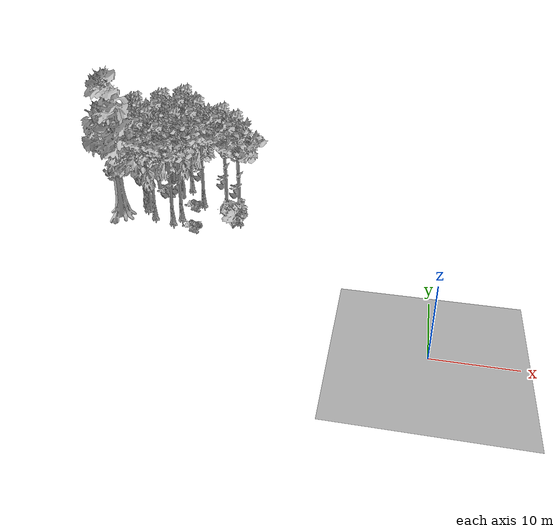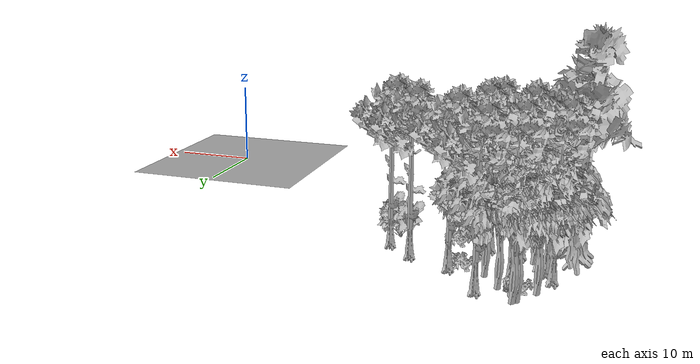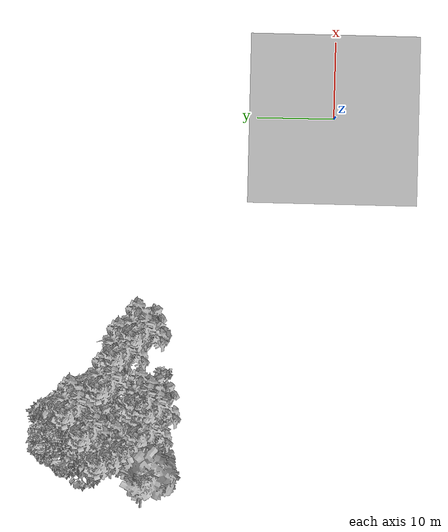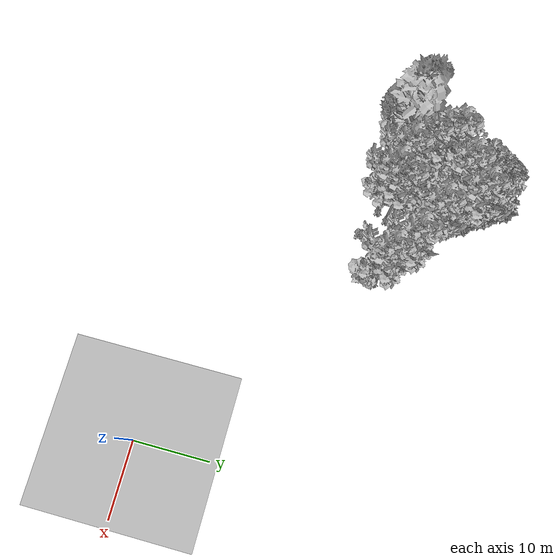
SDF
<sdf version="1.7">
 <world name="default">
  <model name="ground_plane">
   <static>1</static>
   <link name="link">
    <collision name="collision">
     <geometry><plane><normal>0 0 1</normal><size>100 100</size></plane></geometry>
     <surface><contact><ode><min_depth>0.01</min_depth><max_vel>0</max_vel></ode></contact></surface>
    </collision>
    <visual name="grass">
     <cast_shadows>0</cast_shadows>
     <geometry>
      <mesh>
       <scale>0.41000000000000003 0.41000000000000003 0.1</scale>
       <uri>file://grass_plane/meshes/grass_plane.dae</uri>
      </mesh>
     </geometry>
    </visual>
   </link>
  </model>
  <model name="Tree 4">
   <static>1</static>
   <pose>-30.380189341605327 26.773847000356994 0 1.57079 -0 0</pose>
   <link name="link">
    <collision name="collision">
     <geometry><mesh><scale>5 5 5</scale><uri>model://tree_9/meshes/tree_9.obj</uri></mesh></geometry>
    </collision>
    <visual name="visual">
     <geometry><mesh><scale>5 5 5</scale><uri>model://tree_9/meshes/tree_9.obj</uri></mesh></geometry>
    </visual>
   </link>
  </model>
  <model name="Tree 43">
   <static>1</static>
   <pose>-45.829143708003514 23.205313448131406 0 1.57079 -0 0</pose>
   <link name="link">
    <collision name="collision">
     <geometry><mesh><scale>5 5 5</scale><uri>model://tree_4/meshes/tree_4.obj</uri></mesh></geometry>
    </collision>
    <visual name="visual">
     <geometry><mesh><scale>5 5 5</scale><uri>model://tree_4/meshes/tree_4.obj</uri></mesh></geometry>
    </visual>
   </link>
  </model>
  <model name="Tree 49">
   <static>1</static>
   <pose>-37.8095459447257 32.8377533887699 0 1.57079 -0 0</pose>
   <link name="link">
    <collision name="collision">
     <geometry><mesh><scale>5 5 5</scale><uri>model://tree_9/meshes/tree_9.obj</uri></mesh></geometry>
    </collision>
    <visual name="visual">
     <geometry><mesh><scale>5 5 5</scale><uri>model://tree_9/meshes/tree_9.obj</uri></mesh></geometry>
    </visual>
   </link>
  </model>
  <model name="Tree 64">
   <static>1</static>
   <pose>-38.32085286175642 29.71892166889316 0 1.57079 -0 0</pose>
   <link name="link">
    <collision name="collision">
     <geometry><mesh><scale>5 5 5</scale><uri>model://tree_2/meshes/tree_2.obj</uri></mesh></geometry>
    </collision>
    <visual name="visual">
     <geometry><mesh><scale>5 5 5</scale><uri>model://tree_2/meshes/tree_2.obj</uri></mesh></geometry>
    </visual>
   </link>
  </model>
  <model name="Tree 86">
   <static>1</static>
   <pose>-40.604266709027634 30.70440649570567 0 1.57079 -0 0</pose>
   <link name="link">
    <collision name="collision">
     <geometry><mesh><scale>5 5 5</scale><uri>model://tree_9/meshes/tree_9.obj</uri></mesh></geometry>
    </collision>
    <visual name="visual">
     <geometry><mesh><scale>5 5 5</scale><uri>model://tree_9/meshes/tree_9.obj</uri></mesh></geometry>
    </visual>
   </link>
  </model>
  <model name="Tree 144">
   <static>1</static>
   <pose>-41.424064871114936 34.5058697806371 0 1.57079 -0 0</pose>
   <link name="link">
    <collision name="collision">
     <geometry><mesh><scale>5 5 5</scale><uri>model://tree_2/meshes/tree_2.obj</uri></mesh></geometry>
    </collision>
    <visual name="visual">
     <geometry><mesh><scale>5 5 5</scale><uri>model://tree_2/meshes/tree_2.obj</uri></mesh></geometry>
    </visual>
   </link>
  </model>
  <model name="Tree 176">
   <static>1</static>
   <pose>-37.57247861716034 22.590304304562054 0 1.57079 -0 0</pose>
   <link name="link">
    <collision name="collision">
     <geometry><mesh><scale>5 5 5</scale><uri>model://tree_9/meshes/tree_9.obj</uri></mesh></geometry>
    </collision>
    <visual name="visual">
     <geometry><mesh><scale>5 5 5</scale><uri>model://tree_9/meshes/tree_9.obj</uri></mesh></geometry>
    </visual>
   </link>
  </model>
  <model name="Tree 234">
   <static>1</static>
   <pose>-43.23134581743954 32.07378673769277 0 1.57079 -0 0</pose>
   <link name="link">
    <collision name="collision">
     <geometry><mesh><scale>5 5 5</scale><uri>model://tree_2/meshes/tree_2.obj</uri></mesh></geometry>
    </collision>
    <visual name="visual">
     <geometry><mesh><scale>5 5 5</scale><uri>model://tree_2/meshes/tree_2.obj</uri></mesh></geometry>
    </visual>
   </link>
  </model>
  <model name="Tree 245">
   <static>1</static>
   <pose>-44.102419800687514 28.56726645504625 0 1.57079 -0 0</pose>
   <link name="link">
    <collision name="collision">
     <geometry><mesh><scale>5 5 5</scale><uri>model://tree_9/meshes/tree_9.obj</uri></mesh></geometry>
    </collision>
    <visual name="visual">
     <geometry><mesh><scale>5 5 5</scale><uri>model://tree_9/meshes/tree_9.obj</uri></mesh></geometry>
    </visual>
   </link>
  </model>
  <model name="Tree 253">
   <static>1</static>
   <pose>-43.41135596623838 26.901611295303994 0 1.57079 -0 0</pose>
   <link name="link">
    <collision name="collision">
     <geometry><mesh><scale>5 5 5</scale><uri>model://tree_9/meshes/tree_9.obj</uri></mesh></geometry>
    </collision>
    <visual name="visual">
     <geometry><mesh><scale>5 5 5</scale><uri>model://tree_9/meshes/tree_9.obj</uri></mesh></geometry>
    </visual>
   </link>
  </model>
  <model name="Tree 299">
   <static>1</static>
   <pose>-34.567781017428935 28.5812304809955 0 1.57079 -0 0</pose>
   <link name="link">
    <collision name="collision">
     <geometry><mesh><scale>5 5 5</scale><uri>model://tree_9/meshes/tree_9.obj</uri></mesh></geometry>
    </collision>
    <visual name="visual">
     <geometry><mesh><scale>5 5 5</scale><uri>model://tree_9/meshes/tree_9.obj</uri></mesh></geometry>
    </visual>
   </link>
  </model>
  <model name="Tree 358">
   <static>1</static>
   <pose>-41.77243844822458 34.14281033162936 0 1.57079 -0 0</pose>
   <link name="link">
    <collision name="collision">
     <geometry><mesh><scale>5 5 5</scale><uri>model://tree_2/meshes/tree_2.obj</uri></mesh></geometry>
    </collision>
    <visual name="visual">
     <geometry><mesh><scale>5 5 5</scale><uri>model://tree_2/meshes/tree_2.obj</uri></mesh></geometry>
    </visual>
   </link>
  </model>
  <model name="Tree 360">
   <static>1</static>
   <pose>-42.63068470221041 25.494685621622907 0 1.57079 -0 0</pose>
   <link name="link">
    <collision name="collision">
     <geometry><mesh><scale>5 5 5</scale><uri>model://tree_9/meshes/tree_9.obj</uri></mesh></geometry>
    </collision>
    <visual name="visual">
     <geometry><mesh><scale>5 5 5</scale><uri>model://tree_9/meshes/tree_9.obj</uri></mesh></geometry>
    </visual>
   </link>
  </model>
  <model name="Tree 368">
   <static>1</static>
   <pose>-40.68788474341447 23.506452333726372 0 1.57079 -0 0</pose>
   <link name="link">
    <collision name="collision">
     <geometry><mesh><scale>5 5 5</scale><uri>model://tree_9/meshes/tree_9.obj</uri></mesh></geometry>
    </collision>
    <visual name="visual">
     <geometry><mesh><scale>5 5 5</scale><uri>model://tree_9/meshes/tree_9.obj</uri></mesh></geometry>
    </visual>
   </link>
  </model>
  <model name="Tree 375">
   <static>1</static>
   <pose>-42.22151396639985 25.308304262422283 0 1.57079 -0 0</pose>
   <link name="link">
    <collision name="collision">
     <geometry><mesh><scale>5 5 5</scale><uri>model://tree_2/meshes/tree_2.obj</uri></mesh></geometry>
    </collision>
    <visual name="visual">
     <geometry><mesh><scale>5 5 5</scale><uri>model://tree_2/meshes/tree_2.obj</uri></mesh></geometry>
    </visual>
   </link>
  </model>
  <model name="Tree 400">
   <static>1</static>
   <pose>-39.84734412100117 31.981280660056086 0 1.57079 -0 0</pose>
   <link name="link">
    <collision name="collision">
     <geometry><mesh><scale>5 5 5</scale><uri>model://tree_2/meshes/tree_2.obj</uri></mesh></geometry>
    </collision>
    <visual name="visual">
     <geometry><mesh><scale>5 5 5</scale><uri>model://tree_2/meshes/tree_2.obj</uri></mesh></geometry>
    </visual>
   </link>
  </model>
  <model name="Tree 405">
   <static>1</static>
   <pose>-41.48369884436466 34.03811036914203 0 1.57079 -0 0</pose>
   <link name="link">
    <collision name="collision">
     <geometry><mesh><scale>5 5 5</scale><uri>model://tree_2/meshes/tree_2.obj</uri></mesh></geometry>
    </collision>
    <visual name="visual">
     <geometry><mesh><scale>5 5 5</scale><uri>model://tree_2/meshes/tree_2.obj</uri></mesh></geometry>
    </visual>
   </link>
  </model>
  <model name="Tree 454">
   <static>1</static>
   <pose>-36.61844559717828 23.923042628501477 0 1.57079 -0 0</pose>
   <link name="link">
    <collision name="collision">
     <geometry><mesh><scale>5 5 5</scale><uri>model://tree_9/meshes/tree_9.obj</uri></mesh></geometry>
    </collision>
    <visual name="visual">
     <geometry><mesh><scale>5 5 5</scale><uri>model://tree_9/meshes/tree_9.obj</uri></mesh></geometry>
    </visual>
   </link>
  </model>
  <model name="Tree 479">
   <static>1</static>
   <pose>-27.799838731584007 24.432238916425362 0 1.57079 -0 0</pose>
   <link name="link">
    <collision name="collision">
     <geometry><mesh><scale>5 5 5</scale><uri>model://tree_9/meshes/tree_9.obj</uri></mesh></geometry>
    </collision>
    <visual name="visual">
     <geometry><mesh><scale>5 5 5</scale><uri>model://tree_9/meshes/tree_9.obj</uri></mesh></geometry>
    </visual>
   </link>
  </model>
  <model name="Bush 44">
   <static>1</static>
   <pose>-34.181388447477815 21.53737685447841 0 1.57079 -0 0</pose>
   <link name="link">
    <collision name="collision">
     <geometry><mesh><scale>2 2 2</scale><uri>model://bush_2/meshes/bush_2.obj</uri></mesh></geometry>
    </collision>
    <visual name="visual">
     <geometry><mesh><scale>5 5 5</scale><uri>model://bush_2/meshes/bush_2.obj</uri></mesh></geometry>
    </visual>
   </link>
  </model>
  <model name="Bush 55">
   <static>1</static>
   <pose>-28.37092331719071 22.534785094250466 0 1.57079 -0 0</pose>
   <link name="link">
    <collision name="collision">
     <geometry><mesh><scale>2 2 2</scale><uri>model://bush_1/meshes/bush_1.obj</uri></mesh></geometry>
    </collision>
    <visual name="visual">
     <geometry><mesh><scale>5 5 5</scale><uri>model://bush_1/meshes/bush_1.obj</uri></mesh></geometry>
    </visual>
   </link>
  </model>
  <model name="Bush 89">
   <static>1</static>
   <pose>-41.41458242330361 30.875459016130648 0 1.57079 -0 0</pose>
   <link name="link">
    <collision name="collision">
     <geometry><mesh><scale>2 2 2</scale><uri>model://bush_2/meshes/bush_2.obj</uri></mesh></geometry>
    </collision>
    <visual name="visual">
     <geometry><mesh><scale>5 5 5</scale><uri>model://bush_2/meshes/bush_2.obj</uri></mesh></geometry>
    </visual>
   </link>
  </model>
  <model name="Bush 96">
   <static>1</static>
   <pose>-35.73690974700907 27.42534537612164 0 1.57079 -0 0</pose>
   <link name="link">
    <collision name="collision">
     <geometry><mesh><scale>2 2 2</scale><uri>model://bush_2/meshes/bush_2.obj</uri></mesh></geometry>
    </collision>
    <visual name="visual">
     <geometry><mesh><scale>5 5 5</scale><uri>model://bush_2/meshes/bush_2.obj</uri></mesh></geometry>
    </visual>
   </link>
  </model>
 </world>
</sdf>
